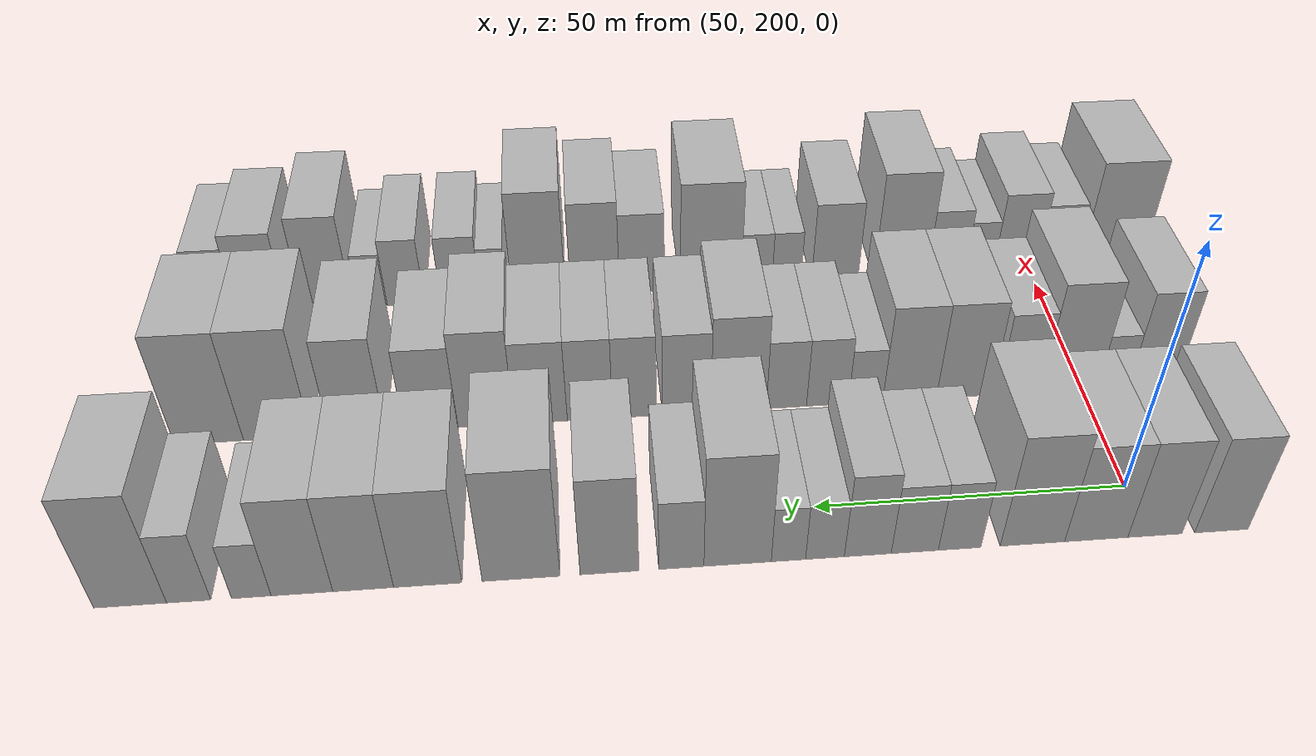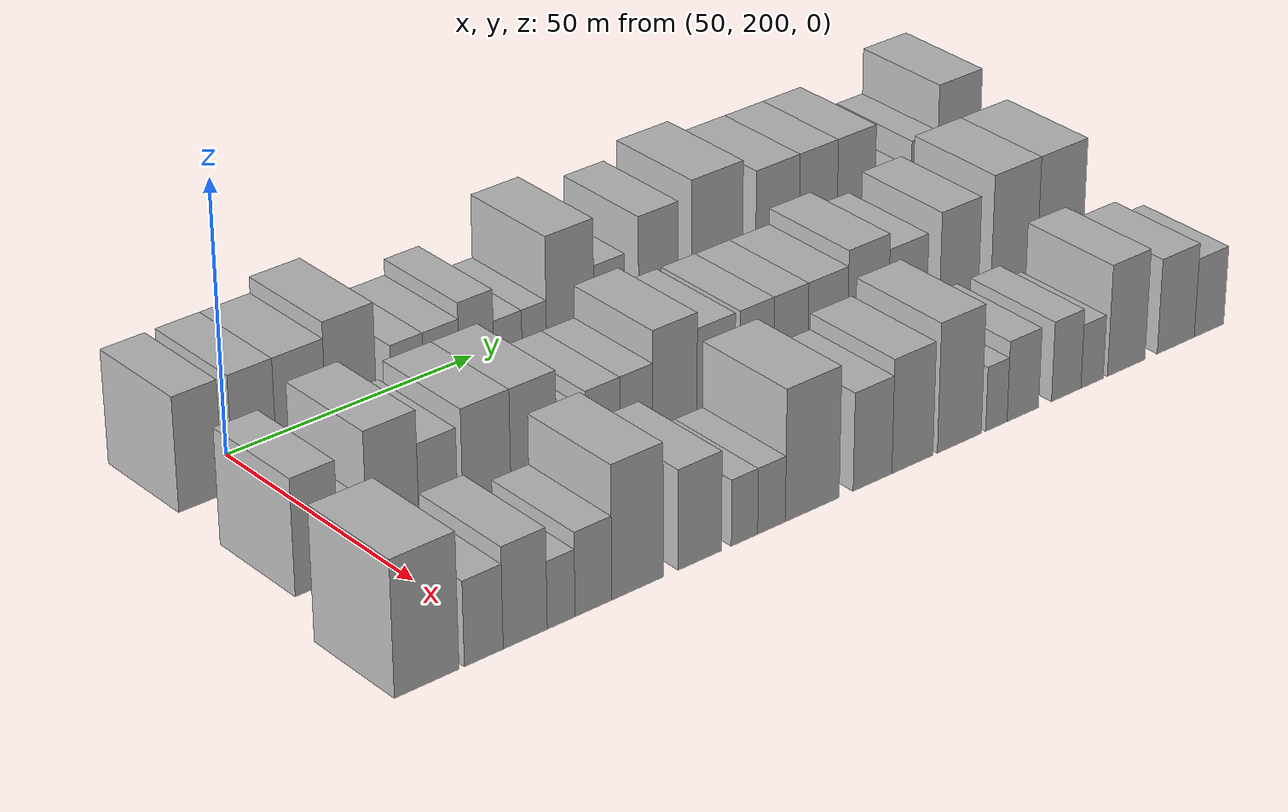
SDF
<sdf version="1.6">
 <world name="default">
  <model name="building_63">
   <static>1</static>
   <pose>50.0000 188.1334 0 0.000000 0.000000 0.000000</pose>
   <link name="link">
    <pose>0 0 10.50 0 0 0</pose>
    <collision name="collision"><geometry><box><size>20.0000 8.5099 21.0000</size></box></geometry></collision>
    <visual name="visual">
     <cast_shadows>0</cast_shadows>
     <geometry><box><size>20.0000 8.5099 21.0000</size></box></geometry>
     <material>
      <script>
       <uri>model://HANNAS_wall/materials/scripts</uri>
       <uri>model://HANNAS_wall/materials/textures</uri>
       <name>vrc/HANNAS_wall</name>
      </script>
     </material>
    </visual>
   </link>
  </model>
  <model name="building_64">
   <static>1</static>
   <pose>50.0000 198.6740 0 0.000000 0.000000 0.000000</pose>
   <link name="link">
    <pose>0 0 10.50 0 0 0</pose>
    <collision name="collision"><geometry><box><size>20.0000 8.5712 21.0000</size></box></geometry></collision>
    <visual name="visual">
     <cast_shadows>0</cast_shadows>
     <geometry><box><size>20.0000 8.5712 21.0000</size></box></geometry>
     <material>
      <script>
       <uri>model://HANNAS_wall/materials/scripts</uri>
       <uri>model://HANNAS_wall/materials/textures</uri>
       <name>vrc/HANNAS_wall</name>
      </script>
     </material>
    </visual>
   </link>
  </model>
  <model name="building_65">
   <static>1</static>
   <pose>50.0000 207.9277 0 0.000000 0.000000 0.000000</pose>
   <link name="link">
    <pose>0 0 10.50 0 0 0</pose>
    <collision name="collision"><geometry><box><size>20.0000 9.9363 21.0000</size></box></geometry></collision>
    <visual name="visual">
     <cast_shadows>0</cast_shadows>
     <geometry><box><size>20.0000 9.9363 21.0000</size></box></geometry>
     <material>
      <script>
       <uri>model://HANNAS_wall/materials/scripts</uri>
       <uri>model://HANNAS_wall/materials/textures</uri>
       <name>vrc/HANNAS_wall</name>
      </script>
     </material>
    </visual>
   </link>
  </model>
  <model name="building_66">
   <static>1</static>
   <pose>50.0000 217.9356 0 0.000000 0.000000 0.000000</pose>
   <link name="link">
    <pose>0 0 12.00 0 0 0</pose>
    <collision name="collision"><geometry><box><size>20.0000 10.0795 24.0000</size></box></geometry></collision>
    <visual name="visual">
     <cast_shadows>0</cast_shadows>
     <geometry><box><size>20.0000 10.0795 24.0000</size></box></geometry>
     <material>
      <script>
       <uri>model://HANNAS_wall/materials/scripts</uri>
       <uri>model://HANNAS_wall/materials/textures</uri>
       <name>vrc/HANNAS_wall</name>
      </script>
     </material>
    </visual>
   </link>
  </model>
  <model name="building_67">
   <static>1</static>
   <pose>50.0000 229.2814 0 0.000000 0.000000 0.000000</pose>
   <link name="link">
    <pose>0 0 7.50 0 0 0</pose>
    <collision name="collision"><geometry><box><size>20.0000 6.6119 15.0000</size></box></geometry></collision>
    <visual name="visual">
     <cast_shadows>0</cast_shadows>
     <geometry><box><size>20.0000 6.6119 15.0000</size></box></geometry>
     <material>
      <script>
       <uri>model://HANNAS_wall/materials/scripts</uri>
       <uri>model://HANNAS_wall/materials/textures</uri>
       <name>vrc/HANNAS_wall</name>
      </script>
     </material>
    </visual>
   </link>
  </model>
  <model name="building_68">
   <static>1</static>
   <pose>50.0000 236.2317 0 0.000000 0.000000 0.000000</pose>
   <link name="link">
    <pose>0 0 7.50 0 0 0</pose>
    <collision name="collision"><geometry><box><size>20.0000 7.2888 15.0000</size></box></geometry></collision>
    <visual name="visual">
     <cast_shadows>0</cast_shadows>
     <geometry><box><size>20.0000 7.2888 15.0000</size></box></geometry>
     <material>
      <script>
       <uri>model://HANNAS_wall/materials/scripts</uri>
       <uri>model://HANNAS_wall/materials/textures</uri>
       <name>vrc/HANNAS_wall</name>
      </script>
     </material>
    </visual>
   </link>
  </model>
  <model name="building_69">
   <static>1</static>
   <pose>50.0000 243.4868 0 0.000000 0.000000 0.000000</pose>
   <link name="link">
    <pose>0 0 9.00 0 0 0</pose>
    <collision name="collision"><geometry><box><size>20.0000 7.2214 18.0000</size></box></geometry></collision>
    <visual name="visual">
     <cast_shadows>0</cast_shadows>
     <geometry><box><size>20.0000 7.2214 18.0000</size></box></geometry>
     <material>
      <script>
       <uri>model://HANNAS_wall/materials/scripts</uri>
       <uri>model://HANNAS_wall/materials/textures</uri>
       <name>vrc/HANNAS_wall</name>
      </script>
     </material>
    </visual>
   </link>
  </model>
  <model name="building_70">
   <static>1</static>
   <pose>50.0000 250.0693 0 0.000000 0.000000 0.000000</pose>
   <link name="link">
    <pose>0 0 6.00 0 0 0</pose>
    <collision name="collision"><geometry><box><size>20.0000 5.9436 12.0000</size></box></geometry></collision>
    <visual name="visual">
     <cast_shadows>0</cast_shadows>
     <geometry><box><size>20.0000 5.9436 12.0000</size></box></geometry>
     <material>
      <script>
       <uri>model://HANNAS_wall/materials/scripts</uri>
       <uri>model://HANNAS_wall/materials/textures</uri>
       <name>vrc/HANNAS_wall</name>
      </script>
     </material>
    </visual>
   </link>
  </model>
  <model name="building_71">
   <static>1</static>
   <pose>50.0000 255.6571 0 0.000000 0.000000 0.000000</pose>
   <link name="link">
    <pose>0 0 6.00 0 0 0</pose>
    <collision name="collision"><geometry><box><size>20.0000 5.2319 12.0000</size></box></geometry></collision>
    <visual name="visual">
     <cast_shadows>0</cast_shadows>
     <geometry><box><size>20.0000 5.2319 12.0000</size></box></geometry>
     <material>
      <script>
       <uri>model://HANNAS_wall/materials/scripts</uri>
       <uri>model://HANNAS_wall/materials/textures</uri>
       <name>vrc/HANNAS_wall</name>
      </script>
     </material>
    </visual>
   </link>
  </model>
  <model name="building_72">
   <static>1</static>
   <pose>50.0000 263.3896 0 0.000000 0.000000 0.000000</pose>
   <link name="link">
    <pose>0 0 12.00 0 0 0</pose>
    <collision name="collision"><geometry><box><size>20.0000 10.2332 24.0000</size></box></geometry></collision>
    <visual name="visual">
     <cast_shadows>0</cast_shadows>
     <geometry><box><size>20.0000 10.2332 24.0000</size></box></geometry>
     <material>
      <script>
       <uri>model://HANNAS_wall/materials/scripts</uri>
       <uri>model://HANNAS_wall/materials/textures</uri>
       <name>vrc/HANNAS_wall</name>
      </script>
     </material>
    </visual>
   </link>
  </model>
  <model name="building_73">
   <static>1</static>
   <pose>50.0000 271.9100 0 0.000000 0.000000 0.000000</pose>
   <link name="link">
    <pose>0 0 7.50 0 0 0</pose>
    <collision name="collision"><geometry><box><size>20.0000 6.8075 15.0000</size></box></geometry></collision>
    <visual name="visual">
     <cast_shadows>0</cast_shadows>
     <geometry><box><size>20.0000 6.8075 15.0000</size></box></geometry>
     <material>
      <script>
       <uri>model://HANNAS_wall/materials/scripts</uri>
       <uri>model://HANNAS_wall/materials/textures</uri>
       <name>vrc/HANNAS_wall</name>
      </script>
     </material>
    </visual>
   </link>
  </model>
  <model name="building_74">
   <static>1</static>
   <pose>50.0000 282.7327 0 0.000000 0.000000 0.000000</pose>
   <link name="link">
    <pose>0 0 10.50 0 0 0</pose>
    <collision name="collision"><geometry><box><size>20.0000 8.8379 21.0000</size></box></geometry></collision>
    <visual name="visual">
     <cast_shadows>0</cast_shadows>
     <geometry><box><size>20.0000 8.8379 21.0000</size></box></geometry>
     <material>
      <script>
       <uri>model://HANNAS_wall/materials/scripts</uri>
       <uri>model://HANNAS_wall/materials/textures</uri>
       <name>vrc/HANNAS_wall</name>
      </script>
     </material>
    </visual>
   </link>
  </model>
  <model name="building_75">
   <static>1</static>
   <pose>50.0000 295.9486 0 0.000000 0.000000 0.000000</pose>
   <link name="link">
    <pose>0 0 12.00 0 0 0</pose>
    <collision name="collision"><geometry><box><size>20.0000 11.5941 24.0000</size></box></geometry></collision>
    <visual name="visual">
     <cast_shadows>0</cast_shadows>
     <geometry><box><size>20.0000 11.5941 24.0000</size></box></geometry>
     <material>
      <script>
       <uri>model://HANNAS_wall/materials/scripts</uri>
       <uri>model://HANNAS_wall/materials/textures</uri>
       <name>vrc/HANNAS_wall</name>
      </script>
     </material>
    </visual>
   </link>
  </model>
  <model name="building_76">
   <static>1</static>
   <pose>50.0000 309.7938 0 0.000000 0.000000 0.000000</pose>
   <link name="link">
    <pose>0 0 10.50 0 0 0</pose>
    <collision name="collision"><geometry><box><size>20.0000 10.0963 21.0000</size></box></geometry></collision>
    <visual name="visual">
     <cast_shadows>0</cast_shadows>
     <geometry><box><size>20.0000 10.0963 21.0000</size></box></geometry>
     <material>
      <script>
       <uri>model://HANNAS_wall/materials/scripts</uri>
       <uri>model://HANNAS_wall/materials/textures</uri>
       <name>vrc/HANNAS_wall</name>
      </script>
     </material>
    </visual>
   </link>
  </model>
  <model name="building_77">
   <static>1</static>
   <pose>50.0000 319.3017 0 0.000000 0.000000 0.000000</pose>
   <link name="link">
    <pose>0 0 10.50 0 0 0</pose>
    <collision name="collision"><geometry><box><size>20.0000 8.9195 21.0000</size></box></geometry></collision>
    <visual name="visual">
     <cast_shadows>0</cast_shadows>
     <geometry><box><size>20.0000 8.9195 21.0000</size></box></geometry>
     <material>
      <script>
       <uri>model://HANNAS_wall/materials/scripts</uri>
       <uri>model://HANNAS_wall/materials/textures</uri>
       <name>vrc/HANNAS_wall</name>
      </script>
     </material>
    </visual>
   </link>
  </model>
  <model name="building_78">
   <static>1</static>
   <pose>50.0000 328.2589 0 0.000000 0.000000 0.000000</pose>
   <link name="link">
    <pose>0 0 10.50 0 0 0</pose>
    <collision name="collision"><geometry><box><size>20.0000 8.9950 21.0000</size></box></geometry></collision>
    <visual name="visual">
     <cast_shadows>0</cast_shadows>
     <geometry><box><size>20.0000 8.9950 21.0000</size></box></geometry>
     <material>
      <script>
       <uri>model://HANNAS_wall/materials/scripts</uri>
       <uri>model://HANNAS_wall/materials/textures</uri>
       <name>vrc/HANNAS_wall</name>
      </script>
     </material>
    </visual>
   </link>
  </model>
  <model name="building_79">
   <static>1</static>
   <pose>50.0000 335.6322 0 0.000000 0.000000 0.000000</pose>
   <link name="link">
    <pose>0 0 6.00 0 0 0</pose>
    <collision name="collision"><geometry><box><size>20.0000 5.7516 12.0000</size></box></geometry></collision>
    <visual name="visual">
     <cast_shadows>0</cast_shadows>
     <geometry><box><size>20.0000 5.7516 12.0000</size></box></geometry>
     <material>
      <script>
       <uri>model://HANNAS_wall/materials/scripts</uri>
       <uri>model://HANNAS_wall/materials/textures</uri>
       <name>vrc/HANNAS_wall</name>
      </script>
     </material>
    </visual>
   </link>
  </model>
  <model name="building_80">
   <static>1</static>
   <pose>50.0000 344.6943 0 0.000000 0.000000 0.000000</pose>
   <link name="link">
    <pose>0 0 7.50 0 0 0</pose>
    <collision name="collision"><geometry><box><size>20.0000 6.3726 15.0000</size></box></geometry></collision>
    <visual name="visual">
     <cast_shadows>0</cast_shadows>
     <geometry><box><size>20.0000 6.3726 15.0000</size></box></geometry>
     <material>
      <script>
       <uri>model://HANNAS_wall/materials/scripts</uri>
       <uri>model://HANNAS_wall/materials/textures</uri>
       <name>vrc/HANNAS_wall</name>
      </script>
     </material>
    </visual>
   </link>
  </model>
  <model name="building_81">
   <static>1</static>
   <pose>50.0000 353.1328 0 0.000000 0.000000 0.000000</pose>
   <link name="link">
    <pose>0 0 12.00 0 0 0</pose>
    <collision name="collision"><geometry><box><size>20.0000 10.5044 24.0000</size></box></geometry></collision>
    <visual name="visual">
     <cast_shadows>0</cast_shadows>
     <geometry><box><size>20.0000 10.5044 24.0000</size></box></geometry>
     <material>
      <script>
       <uri>model://HANNAS_wall/materials/scripts</uri>
       <uri>model://HANNAS_wall/materials/textures</uri>
       <name>vrc/HANNAS_wall</name>
      </script>
     </material>
    </visual>
   </link>
  </model>
  <model name="building_134">
   <static>1</static>
   <pose>82.0000 187.6518 0 0.000000 0.000000 0.000000</pose>
   <link name="link">
    <pose>0 0 10.50 0 0 0</pose>
    <collision name="collision"><geometry><box><size>20.0000 8.4010 21.0000</size></box></geometry></collision>
    <visual name="visual">
     <cast_shadows>0</cast_shadows>
     <geometry><box><size>20.0000 8.4010 21.0000</size></box></geometry>
     <material>
      <script>
       <uri>model://HANNAS_wall/materials/scripts</uri>
       <uri>model://HANNAS_wall/materials/textures</uri>
       <name>vrc/HANNAS_wall</name>
      </script>
     </material>
    </visual>
   </link>
  </model>
  <model name="building_135">
   <static>1</static>
   <pose>82.0000 194.5746 0 0.000000 0.000000 0.000000</pose>
   <link name="link">
    <pose>0 0 6.00 0 0 0</pose>
    <collision name="collision"><geometry><box><size>20.0000 5.4446 12.0000</size></box></geometry></collision>
    <visual name="visual">
     <cast_shadows>0</cast_shadows>
     <geometry><box><size>20.0000 5.4446 12.0000</size></box></geometry>
     <material>
      <script>
       <uri>model://HANNAS_wall/materials/scripts</uri>
       <uri>model://HANNAS_wall/materials/textures</uri>
       <name>vrc/HANNAS_wall</name>
      </script>
     </material>
    </visual>
   </link>
  </model>
  <model name="building_136">
   <static>1</static>
   <pose>82.0000 202.2947 0 0.000000 0.000000 0.000000</pose>
   <link name="link">
    <pose>0 0 12.00 0 0 0</pose>
    <collision name="collision"><geometry><box><size>20.0000 9.9957 24.0000</size></box></geometry></collision>
    <visual name="visual">
     <cast_shadows>0</cast_shadows>
     <geometry><box><size>20.0000 9.9957 24.0000</size></box></geometry>
     <material>
      <script>
       <uri>model://HANNAS_wall/materials/scripts</uri>
       <uri>model://HANNAS_wall/materials/textures</uri>
       <name>vrc/HANNAS_wall</name>
      </script>
     </material>
    </visual>
   </link>
  </model>
  <model name="building_137">
   <static>1</static>
   <pose>82.0000 211.0833 0 0.000000 0.000000 0.000000</pose>
   <link name="link">
    <pose>0 0 9.00 0 0 0</pose>
    <collision name="collision"><geometry><box><size>20.0000 7.5814 18.0000</size></box></geometry></collision>
    <visual name="visual">
     <cast_shadows>0</cast_shadows>
     <geometry><box><size>20.0000 7.5814 18.0000</size></box></geometry>
     <material>
      <script>
       <uri>model://HANNAS_wall/materials/scripts</uri>
       <uri>model://HANNAS_wall/materials/textures</uri>
       <name>vrc/HANNAS_wall</name>
      </script>
     </material>
    </visual>
   </link>
  </model>
  <model name="building_138">
   <static>1</static>
   <pose>82.0000 220.6596 0 0.000000 0.000000 0.000000</pose>
   <link name="link">
    <pose>0 0 10.50 0 0 0</pose>
    <collision name="collision"><geometry><box><size>20.0000 9.5712 21.0000</size></box></geometry></collision>
    <visual name="visual">
     <cast_shadows>0</cast_shadows>
     <geometry><box><size>20.0000 9.5712 21.0000</size></box></geometry>
     <material>
      <script>
       <uri>model://HANNAS_wall/materials/scripts</uri>
       <uri>model://HANNAS_wall/materials/textures</uri>
       <name>vrc/HANNAS_wall</name>
      </script>
     </material>
    </visual>
   </link>
  </model>
  <model name="building_139">
   <static>1</static>
   <pose>82.0000 230.0938 0 0.000000 0.000000 0.000000</pose>
   <link name="link">
    <pose>0 0 10.50 0 0 0</pose>
    <collision name="collision"><geometry><box><size>20.0000 9.2970 21.0000</size></box></geometry></collision>
    <visual name="visual">
     <cast_shadows>0</cast_shadows>
     <geometry><box><size>20.0000 9.2970 21.0000</size></box></geometry>
     <material>
      <script>
       <uri>model://HANNAS_wall/materials/scripts</uri>
       <uri>model://HANNAS_wall/materials/textures</uri>
       <name>vrc/HANNAS_wall</name>
      </script>
     </material>
    </visual>
   </link>
  </model>
  <model name="building_140">
   <static>1</static>
   <pose>82.0000 237.6966 0 0.000000 0.000000 0.000000</pose>
   <link name="link">
    <pose>0 0 6.00 0 0 0</pose>
    <collision name="collision"><geometry><box><size>20.0000 5.9086 12.0000</size></box></geometry></collision>
    <visual name="visual">
     <cast_shadows>0</cast_shadows>
     <geometry><box><size>20.0000 5.9086 12.0000</size></box></geometry>
     <material>
      <script>
       <uri>model://HANNAS_wall/materials/scripts</uri>
       <uri>model://HANNAS_wall/materials/textures</uri>
       <name>vrc/HANNAS_wall</name>
      </script>
     </material>
    </visual>
   </link>
  </model>
  <model name="building_141">
   <static>1</static>
   <pose>82.0000 244.2305 0 0.000000 0.000000 0.000000</pose>
   <link name="link">
    <pose>0 0 7.50 0 0 0</pose>
    <collision name="collision"><geometry><box><size>20.0000 7.1593 15.0000</size></box></geometry></collision>
    <visual name="visual">
     <cast_shadows>0</cast_shadows>
     <geometry><box><size>20.0000 7.1593 15.0000</size></box></geometry>
     <material>
      <script>
       <uri>model://HANNAS_wall/materials/scripts</uri>
       <uri>model://HANNAS_wall/materials/textures</uri>
       <name>vrc/HANNAS_wall</name>
      </script>
     </material>
    </visual>
   </link>
  </model>
  <model name="building_142">
   <static>1</static>
   <pose>82.0000 251.2373 0 0.000000 0.000000 0.000000</pose>
   <link name="link">
    <pose>0 0 7.50 0 0 0</pose>
    <collision name="collision"><geometry><box><size>20.0000 6.8542 15.0000</size></box></geometry></collision>
    <visual name="visual">
     <cast_shadows>0</cast_shadows>
     <geometry><box><size>20.0000 6.8542 15.0000</size></box></geometry>
     <material>
      <script>
       <uri>model://HANNAS_wall/materials/scripts</uri>
       <uri>model://HANNAS_wall/materials/textures</uri>
       <name>vrc/HANNAS_wall</name>
      </script>
     </material>
    </visual>
   </link>
  </model>
  <model name="building_143">
   <static>1</static>
   <pose>82.0000 259.3766 0 0.000000 0.000000 0.000000</pose>
   <link name="link">
    <pose>0 0 10.50 0 0 0</pose>
    <collision name="collision"><geometry><box><size>20.0000 9.4245 21.0000</size></box></geometry></collision>
    <visual name="visual">
     <cast_shadows>0</cast_shadows>
     <geometry><box><size>20.0000 9.4245 21.0000</size></box></geometry>
     <material>
      <script>
       <uri>model://HANNAS_wall/materials/scripts</uri>
       <uri>model://HANNAS_wall/materials/textures</uri>
       <name>vrc/HANNAS_wall</name>
      </script>
     </material>
    </visual>
   </link>
  </model>
  <model name="building_144">
   <static>1</static>
   <pose>82.0000 268.1924 0 0.000000 0.000000 0.000000</pose>
   <link name="link">
    <pose>0 0 9.00 0 0 0</pose>
    <collision name="collision"><geometry><box><size>20.0000 8.2071 18.0000</size></box></geometry></collision>
    <visual name="visual">
     <cast_shadows>0</cast_shadows>
     <geometry><box><size>20.0000 8.2071 18.0000</size></box></geometry>
     <material>
      <script>
       <uri>model://HANNAS_wall/materials/scripts</uri>
       <uri>model://HANNAS_wall/materials/textures</uri>
       <name>vrc/HANNAS_wall</name>
      </script>
     </material>
    </visual>
   </link>
  </model>
  <model name="building_145">
   <static>1</static>
   <pose>82.0000 276.9902 0 0.000000 0.000000 0.000000</pose>
   <link name="link">
    <pose>0 0 9.00 0 0 0</pose>
    <collision name="collision"><geometry><box><size>20.0000 7.3884 18.0000</size></box></geometry></collision>
    <visual name="visual">
     <cast_shadows>0</cast_shadows>
     <geometry><box><size>20.0000 7.3884 18.0000</size></box></geometry>
     <material>
      <script>
       <uri>model://HANNAS_wall/materials/scripts</uri>
       <uri>model://HANNAS_wall/materials/textures</uri>
       <name>vrc/HANNAS_wall</name>
      </script>
     </material>
    </visual>
   </link>
  </model>
  <model name="building_146">
   <static>1</static>
   <pose>82.0000 284.4821 0 0.000000 0.000000 0.000000</pose>
   <link name="link">
    <pose>0 0 9.00 0 0 0</pose>
    <collision name="collision"><geometry><box><size>20.0000 7.5956 18.0000</size></box></geometry></collision>
    <visual name="visual">
     <cast_shadows>0</cast_shadows>
     <geometry><box><size>20.0000 7.5956 18.0000</size></box></geometry>
     <material>
      <script>
       <uri>model://HANNAS_wall/materials/scripts</uri>
       <uri>model://HANNAS_wall/materials/textures</uri>
       <name>vrc/HANNAS_wall</name>
      </script>
     </material>
    </visual>
   </link>
  </model>
  <model name="building_147">
   <static>1</static>
   <pose>82.0000 292.7275 0 0.000000 0.000000 0.000000</pose>
   <link name="link">
    <pose>0 0 9.00 0 0 0</pose>
    <collision name="collision"><geometry><box><size>20.0000 8.8951 18.0000</size></box></geometry></collision>
    <visual name="visual">
     <cast_shadows>0</cast_shadows>
     <geometry><box><size>20.0000 8.8951 18.0000</size></box></geometry>
     <material>
      <script>
       <uri>model://HANNAS_wall/materials/scripts</uri>
       <uri>model://HANNAS_wall/materials/textures</uri>
       <name>vrc/HANNAS_wall</name>
      </script>
     </material>
    </visual>
   </link>
  </model>
  <model name="building_148">
   <static>1</static>
   <pose>82.0000 301.8268 0 0.000000 0.000000 0.000000</pose>
   <link name="link">
    <pose>0 0 10.50 0 0 0</pose>
    <collision name="collision"><geometry><box><size>20.0000 9.3036 21.0000</size></box></geometry></collision>
    <visual name="visual">
     <cast_shadows>0</cast_shadows>
     <geometry><box><size>20.0000 9.3036 21.0000</size></box></geometry>
     <material>
      <script>
       <uri>model://HANNAS_wall/materials/scripts</uri>
       <uri>model://HANNAS_wall/materials/textures</uri>
       <name>vrc/HANNAS_wall</name>
      </script>
     </material>
    </visual>
   </link>
  </model>
  <model name="building_149">
   <static>1</static>
   <pose>82.0000 310.9377 0 0.000000 0.000000 0.000000</pose>
   <link name="link">
    <pose>0 0 9.00 0 0 0</pose>
    <collision name="collision"><geometry><box><size>20.0000 8.9181 18.0000</size></box></geometry></collision>
    <visual name="visual">
     <cast_shadows>0</cast_shadows>
     <geometry><box><size>20.0000 8.9181 18.0000</size></box></geometry>
     <material>
      <script>
       <uri>model://HANNAS_wall/materials/scripts</uri>
       <uri>model://HANNAS_wall/materials/textures</uri>
       <name>vrc/HANNAS_wall</name>
      </script>
     </material>
    </visual>
   </link>
  </model>
  <model name="building_150">
   <static>1</static>
   <pose>82.0000 323.0049 0 0.000000 0.000000 0.000000</pose>
   <link name="link">
    <pose>0 0 10.50 0 0 0</pose>
    <collision name="collision"><geometry><box><size>20.0000 9.2163 21.0000</size></box></geometry></collision>
    <visual name="visual">
     <cast_shadows>0</cast_shadows>
     <geometry><box><size>20.0000 9.2163 21.0000</size></box></geometry>
     <material>
      <script>
       <uri>model://HANNAS_wall/materials/scripts</uri>
       <uri>model://HANNAS_wall/materials/textures</uri>
       <name>vrc/HANNAS_wall</name>
      </script>
     </material>
    </visual>
   </link>
  </model>
  <model name="building_151">
   <static>1</static>
   <pose>82.0000 336.1440 0 0.000000 0.000000 0.000000</pose>
   <link name="link">
    <pose>0 0 12.00 0 0 0</pose>
    <collision name="collision"><geometry><box><size>20.0000 11.0619 24.0000</size></box></geometry></collision>
    <visual name="visual">
     <cast_shadows>0</cast_shadows>
     <geometry><box><size>20.0000 11.0619 24.0000</size></box></geometry>
     <material>
      <script>
       <uri>model://HANNAS_wall/materials/scripts</uri>
       <uri>model://HANNAS_wall/materials/textures</uri>
       <name>vrc/HANNAS_wall</name>
      </script>
     </material>
    </visual>
   </link>
  </model>
  <model name="building_152">
   <static>1</static>
   <pose>82.0000 347.2780 0 0.000000 0.000000 0.000000</pose>
   <link name="link">
    <pose>0 0 12.00 0 0 0</pose>
    <collision name="collision"><geometry><box><size>20.0000 11.2061 24.0000</size></box></geometry></collision>
    <visual name="visual">
     <cast_shadows>0</cast_shadows>
     <geometry><box><size>20.0000 11.2061 24.0000</size></box></geometry>
     <material>
      <script>
       <uri>model://HANNAS_wall/materials/scripts</uri>
       <uri>model://HANNAS_wall/materials/textures</uri>
       <name>vrc/HANNAS_wall</name>
      </script>
     </material>
    </visual>
   </link>
  </model>
  <model name="building_212">
   <static>1</static>
   <pose>114.0000 184.3398 0 0.000000 0.000000 0.000000</pose>
   <link name="link">
    <pose>0 0 12.00 0 0 0</pose>
    <collision name="collision"><geometry><box><size>20.0000 11.9825 24.0000</size></box></geometry></collision>
    <visual name="visual">
     <cast_shadows>0</cast_shadows>
     <geometry><box><size>20.0000 11.9825 24.0000</size></box></geometry>
     <material>
      <script>
       <uri>model://HANNAS_wall/materials/scripts</uri>
       <uri>model://HANNAS_wall/materials/textures</uri>
       <name>vrc/HANNAS_wall</name>
      </script>
     </material>
    </visual>
   </link>
  </model>
  <model name="building_213">
   <static>1</static>
   <pose>114.0000 195.0017 0 0.000000 0.000000 0.000000</pose>
   <link name="link">
    <pose>0 0 7.50 0 0 0</pose>
    <collision name="collision"><geometry><box><size>20.0000 7.3414 15.0000</size></box></geometry></collision>
    <visual name="visual">
     <cast_shadows>0</cast_shadows>
     <geometry><box><size>20.0000 7.3414 15.0000</size></box></geometry>
     <material>
      <script>
       <uri>model://HANNAS_wall/materials/scripts</uri>
       <uri>model://HANNAS_wall/materials/textures</uri>
       <name>vrc/HANNAS_wall</name>
      </script>
     </material>
    </visual>
   </link>
  </model>
  <model name="building_214">
   <static>1</static>
   <pose>114.0000 202.8927 0 0.000000 0.000000 0.000000</pose>
   <link name="link">
    <pose>0 0 9.00 0 0 0</pose>
    <collision name="collision"><geometry><box><size>20.0000 8.4406 18.0000</size></box></geometry></collision>
    <visual name="visual">
     <cast_shadows>0</cast_shadows>
     <geometry><box><size>20.0000 8.4406 18.0000</size></box></geometry>
     <material>
      <script>
       <uri>model://HANNAS_wall/materials/scripts</uri>
       <uri>model://HANNAS_wall/materials/textures</uri>
       <name>vrc/HANNAS_wall</name>
      </script>
     </material>
    </visual>
   </link>
  </model>
  <model name="building_215">
   <static>1</static>
   <pose>114.0000 209.8138 0 0.000000 0.000000 0.000000</pose>
   <link name="link">
    <pose>0 0 6.00 0 0 0</pose>
    <collision name="collision"><geometry><box><size>20.0000 5.4017 12.0000</size></box></geometry></collision>
    <visual name="visual">
     <cast_shadows>0</cast_shadows>
     <geometry><box><size>20.0000 5.4017 12.0000</size></box></geometry>
     <material>
      <script>
       <uri>model://HANNAS_wall/materials/scripts</uri>
       <uri>model://HANNAS_wall/materials/textures</uri>
       <name>vrc/HANNAS_wall</name>
      </script>
     </material>
    </visual>
   </link>
  </model>
  <model name="building_216">
   <static>1</static>
   <pose>114.0000 216.1209 0 0.000000 0.000000 0.000000</pose>
   <link name="link">
    <pose>0 0 7.50 0 0 0</pose>
    <collision name="collision"><geometry><box><size>20.0000 7.2126 15.0000</size></box></geometry></collision>
    <visual name="visual">
     <cast_shadows>0</cast_shadows>
     <geometry><box><size>20.0000 7.2126 15.0000</size></box></geometry>
     <material>
      <script>
       <uri>model://HANNAS_wall/materials/scripts</uri>
       <uri>model://HANNAS_wall/materials/textures</uri>
       <name>vrc/HANNAS_wall</name>
      </script>
     </material>
    </visual>
   </link>
  </model>
  <model name="building_217">
   <static>1</static>
   <pose>114.0000 224.8561 0 0.000000 0.000000 0.000000</pose>
   <link name="link">
    <pose>0 0 12.00 0 0 0</pose>
    <collision name="collision"><geometry><box><size>20.0000 10.2577 24.0000</size></box></geometry></collision>
    <visual name="visual">
     <cast_shadows>0</cast_shadows>
     <geometry><box><size>20.0000 10.2577 24.0000</size></box></geometry>
     <material>
      <script>
       <uri>model://HANNAS_wall/materials/scripts</uri>
       <uri>model://HANNAS_wall/materials/textures</uri>
       <name>vrc/HANNAS_wall</name>
      </script>
     </material>
    </visual>
   </link>
  </model>
  <model name="building_218">
   <static>1</static>
   <pose>114.0000 237.3900 0 0.000000 0.000000 0.000000</pose>
   <link name="link">
    <pose>0 0 9.00 0 0 0</pose>
    <collision name="collision"><geometry><box><size>20.0000 8.8101 18.0000</size></box></geometry></collision>
    <visual name="visual">
     <cast_shadows>0</cast_shadows>
     <geometry><box><size>20.0000 8.8101 18.0000</size></box></geometry>
     <material>
      <script>
       <uri>model://HANNAS_wall/materials/scripts</uri>
       <uri>model://HANNAS_wall/materials/textures</uri>
       <name>vrc/HANNAS_wall</name>
      </script>
     </material>
    </visual>
   </link>
  </model>
  <model name="building_219">
   <static>1</static>
   <pose>114.0000 246.5191 0 0.000000 0.000000 0.000000</pose>
   <link name="link">
    <pose>0 0 6.00 0 0 0</pose>
    <collision name="collision"><geometry><box><size>20.0000 5.4481 12.0000</size></box></geometry></collision>
    <visual name="visual">
     <cast_shadows>0</cast_shadows>
     <geometry><box><size>20.0000 5.4481 12.0000</size></box></geometry>
     <material>
      <script>
       <uri>model://HANNAS_wall/materials/scripts</uri>
       <uri>model://HANNAS_wall/materials/textures</uri>
       <name>vrc/HANNAS_wall</name>
      </script>
     </material>
    </visual>
   </link>
  </model>
  <model name="building_220">
   <static>1</static>
   <pose>114.0000 252.1282 0 0.000000 0.000000 0.000000</pose>
   <link name="link">
    <pose>0 0 6.00 0 0 0</pose>
    <collision name="collision"><geometry><box><size>20.0000 5.7700 12.0000</size></box></geometry></collision>
    <visual name="visual">
     <cast_shadows>0</cast_shadows>
     <geometry><box><size>20.0000 5.7700 12.0000</size></box></geometry>
     <material>
      <script>
       <uri>model://HANNAS_wall/materials/scripts</uri>
       <uri>model://HANNAS_wall/materials/textures</uri>
       <name>vrc/HANNAS_wall</name>
      </script>
     </material>
    </visual>
   </link>
  </model>
  <model name="building_221">
   <static>1</static>
   <pose>114.0000 260.7251 0 0.000000 0.000000 0.000000</pose>
   <link name="link">
    <pose>0 0 12.00 0 0 0</pose>
    <collision name="collision"><geometry><box><size>20.0000 11.4239 24.0000</size></box></geometry></collision>
    <visual name="visual">
     <cast_shadows>0</cast_shadows>
     <geometry><box><size>20.0000 11.4239 24.0000</size></box></geometry>
     <material>
      <script>
       <uri>model://HANNAS_wall/materials/scripts</uri>
       <uri>model://HANNAS_wall/materials/textures</uri>
       <name>vrc/HANNAS_wall</name>
      </script>
     </material>
    </visual>
   </link>
  </model>
  <model name="building_222">
   <static>1</static>
   <pose>114.0000 273.6353 0 0.000000 0.000000 0.000000</pose>
   <link name="link">
    <pose>0 0 9.00 0 0 0</pose>
    <collision name="collision"><geometry><box><size>20.0000 8.3965 18.0000</size></box></geometry></collision>
    <visual name="visual">
     <cast_shadows>0</cast_shadows>
     <geometry><box><size>20.0000 8.3965 18.0000</size></box></geometry>
     <material>
      <script>
       <uri>model://HANNAS_wall/materials/scripts</uri>
       <uri>model://HANNAS_wall/materials/textures</uri>
       <name>vrc/HANNAS_wall</name>
      </script>
     </material>
    </visual>
   </link>
  </model>
  <model name="building_223">
   <static>1</static>
   <pose>114.0000 282.3345 0 0.000000 0.000000 0.000000</pose>
   <link name="link">
    <pose>0 0 10.50 0 0 0</pose>
    <collision name="collision"><geometry><box><size>20.0000 9.0019 21.0000</size></box></geometry></collision>
    <visual name="visual">
     <cast_shadows>0</cast_shadows>
     <geometry><box><size>20.0000 9.0019 21.0000</size></box></geometry>
     <material>
      <script>
       <uri>model://HANNAS_wall/materials/scripts</uri>
       <uri>model://HANNAS_wall/materials/textures</uri>
       <name>vrc/HANNAS_wall</name>
      </script>
     </material>
    </visual>
   </link>
  </model>
  <model name="building_224">
   <static>1</static>
   <pose>114.0000 292.7412 0 0.000000 0.000000 0.000000</pose>
   <link name="link">
    <pose>0 0 12.00 0 0 0</pose>
    <collision name="collision"><geometry><box><size>20.0000 9.8116 24.0000</size></box></geometry></collision>
    <visual name="visual">
     <cast_shadows>0</cast_shadows>
     <geometry><box><size>20.0000 9.8116 24.0000</size></box></geometry>
     <material>
      <script>
       <uri>model://HANNAS_wall/materials/scripts</uri>
       <uri>model://HANNAS_wall/materials/textures</uri>
       <name>vrc/HANNAS_wall</name>
      </script>
     </material>
    </visual>
   </link>
  </model>
  <model name="building_225">
   <static>1</static>
   <pose>114.0000 301.0799 0 0.000000 0.000000 0.000000</pose>
   <link name="link">
    <pose>0 0 6.00 0 0 0</pose>
    <collision name="collision"><geometry><box><size>20.0000 4.8657 12.0000</size></box></geometry></collision>
    <visual name="visual">
     <cast_shadows>0</cast_shadows>
     <geometry><box><size>20.0000 4.8657 12.0000</size></box></geometry>
     <material>
      <script>
       <uri>model://HANNAS_wall/materials/scripts</uri>
       <uri>model://HANNAS_wall/materials/textures</uri>
       <name>vrc/HANNAS_wall</name>
      </script>
     </material>
    </visual>
   </link>
  </model>
  <model name="building_226">
   <static>1</static>
   <pose>114.0000 307.1224 0 0.000000 0.000000 0.000000</pose>
   <link name="link">
    <pose>0 0 7.50 0 0 0</pose>
    <collision name="collision"><geometry><box><size>20.0000 7.2194 15.0000</size></box></geometry></collision>
    <visual name="visual">
     <cast_shadows>0</cast_shadows>
     <geometry><box><size>20.0000 7.2194 15.0000</size></box></geometry>
     <material>
      <script>
       <uri>model://HANNAS_wall/materials/scripts</uri>
       <uri>model://HANNAS_wall/materials/textures</uri>
       <name>vrc/HANNAS_wall</name>
      </script>
     </material>
    </visual>
   </link>
  </model>
  <model name="building_227">
   <static>1</static>
   <pose>114.0000 317.1518 0 0.000000 0.000000 0.000000</pose>
   <link name="link">
    <pose>0 0 7.50 0 0 0</pose>
    <collision name="collision"><geometry><box><size>20.0000 6.8394 15.0000</size></box></geometry></collision>
    <visual name="visual">
     <cast_shadows>0</cast_shadows>
     <geometry><box><size>20.0000 6.8394 15.0000</size></box></geometry>
     <material>
      <script>
       <uri>model://HANNAS_wall/materials/scripts</uri>
       <uri>model://HANNAS_wall/materials/textures</uri>
       <name>vrc/HANNAS_wall</name>
      </script>
     </material>
    </visual>
   </link>
  </model>
  <model name="building_228">
   <static>1</static>
   <pose>114.0000 323.1954 0 0.000000 0.000000 0.000000</pose>
   <link name="link">
    <pose>0 0 6.00 0 0 0</pose>
    <collision name="collision"><geometry><box><size>20.0000 5.2476 12.0000</size></box></geometry></collision>
    <visual name="visual">
     <cast_shadows>0</cast_shadows>
     <geometry><box><size>20.0000 5.2476 12.0000</size></box></geometry>
     <material>
      <script>
       <uri>model://HANNAS_wall/materials/scripts</uri>
       <uri>model://HANNAS_wall/materials/textures</uri>
       <name>vrc/HANNAS_wall</name>
      </script>
     </material>
    </visual>
   </link>
  </model>
  <model name="building_229">
   <static>1</static>
   <pose>114.0000 331.2754 0 0.000000 0.000000 0.000000</pose>
   <link name="link">
    <pose>0 0 10.50 0 0 0</pose>
    <collision name="collision"><geometry><box><size>20.0000 8.9124 21.0000</size></box></geometry></collision>
    <visual name="visual">
     <cast_shadows>0</cast_shadows>
     <geometry><box><size>20.0000 8.9124 21.0000</size></box></geometry>
     <material>
      <script>
       <uri>model://HANNAS_wall/materials/scripts</uri>
       <uri>model://HANNAS_wall/materials/textures</uri>
       <name>vrc/HANNAS_wall</name>
      </script>
     </material>
    </visual>
   </link>
  </model>
  <model name="building_230">
   <static>1</static>
   <pose>114.0000 343.2182 0 0.000000 0.000000 0.000000</pose>
   <link name="link">
    <pose>0 0 9.00 0 0 0</pose>
    <collision name="collision"><geometry><box><size>20.0000 8.9732 18.0000</size></box></geometry></collision>
    <visual name="visual">
     <cast_shadows>0</cast_shadows>
     <geometry><box><size>20.0000 8.9732 18.0000</size></box></geometry>
     <material>
      <script>
       <uri>model://HANNAS_wall/materials/scripts</uri>
       <uri>model://HANNAS_wall/materials/textures</uri>
       <name>vrc/HANNAS_wall</name>
      </script>
     </material>
    </visual>
   </link>
  </model>
  <model name="building_231">
   <static>1</static>
   <pose>114.0000 351.3201 0 0.000000 0.000000 0.000000</pose>
   <link name="link">
    <pose>0 0 7.50 0 0 0</pose>
    <collision name="collision"><geometry><box><size>20.0000 7.2305 15.0000</size></box></geometry></collision>
    <visual name="visual">
     <cast_shadows>0</cast_shadows>
     <geometry><box><size>20.0000 7.2305 15.0000</size></box></geometry>
     <material>
      <script>
       <uri>model://HANNAS_wall/materials/scripts</uri>
       <uri>model://HANNAS_wall/materials/textures</uri>
       <name>vrc/HANNAS_wall</name>
      </script>
     </material>
    </visual>
   </link>
  </model>
 </world>
</sdf>
